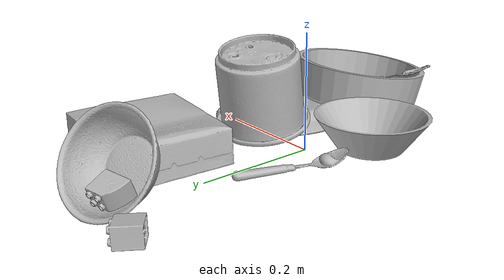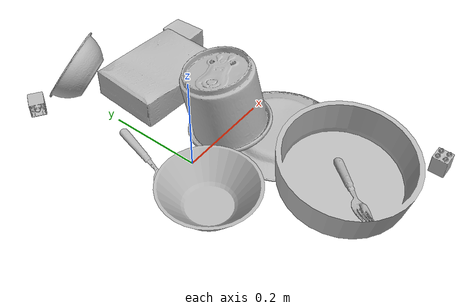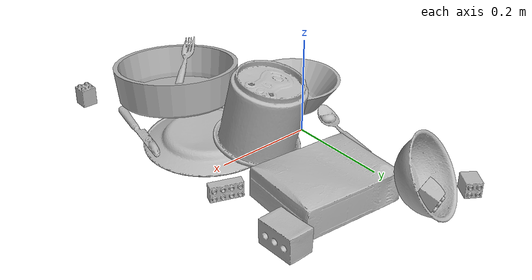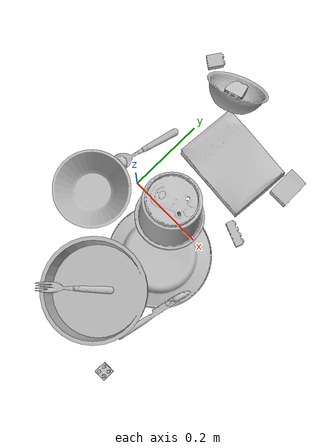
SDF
<sdf version="1.4">
  <world name="default">
    <light name="light1" type="point">
      <pose>0 0 1 0 0 0</pose>
      <diffuse>3 3 3 1</diffuse>
      <specular>3 3 3 1</specular>
    </light>
    <light name="light2" type="point">
      <pose>0 0.5 2 0 0 0</pose>
      <diffuse>1 1 1 1</diffuse>
      <specular>1 1 1 1</specular>
    </light>
    <light name="light3" type="point">
      <pose>0 0.5 2 0 0 0</pose>
      <diffuse>3 3 3 1</diffuse>
      <specular>3 3 3 1</specular>
    </light>
    <scene>
      <ambient>0.7 0.7 0.7</ambient>
    </scene>
    <model name="plate1">
      <link name="link_plate1">
        <collision name="default">
          <geometry>
            <mesh>
              <uri>model://plate/collision_meshes/collision.obj</uri>
              <scale>1.0 1.0 1.0</scale>
            </mesh>
          </geometry>
          <surface>
            <friction>
              <ode>
                <mu>0.5</mu>
                <mu2>0.5</mu2>
              </ode>
            </friction>
          <contact>
        <ode>
            <max_vel>0</max_vel>
            <min_depth>0.0001</min_depth>
            <kp>1e8</kp>
        </ode>
    </contact></surface>
        </collision>
        <visual name="default">
          <geometry>
            <mesh>
              <uri>model://plate/visual_meshes/visual.dae</uri>
              <scale>1.0 1.0 1.0</scale>
            </mesh>
          </geometry>
        </visual>
        <inertial>
          <mass>0.14927330613136292</mass>
          <pose>-0.0006044599576853216 0.00027825793949887156 -0.0010561984963715076 0.0022187657602494516 -0.0032254905015569333 0.45261542380491104</pose>
          <inertia>
            <ixx>0.0006983033</ixx>
            <iyy>0.0006916243</iyy>
            <izz>0.0013657772</izz>
            <ixy>0</ixy>
            <ixz>0</ixz>
            <iyz>0</iyz>
          </inertia>
        </inertial>
      </link>
      <pose>0.169308140873909 -0.08792896568775177 0.013438376598060131 3.141548125325414 -0.003180509156632683 0.1472331380368629</pose>
    </model>
    <model name="plate2">
      <link name="link_plate2">
        <collision name="default">
          <geometry>
            <mesh>
              <uri>model://pan_tefal/collision_meshes/collision.obj</uri>
              <scale>1.0 1.0 1.0</scale>
            </mesh>
          </geometry>
          <surface>
            <friction>
              <ode>
                <mu>0.5</mu>
                <mu2>0.5</mu2>
              </ode>
            </friction>
          <contact>
        <ode>
            <max_vel>0</max_vel>
            <min_depth>0.0001</min_depth>
            <kp>1e8</kp>
        </ode>
    </contact></surface>
        </collision>
        <visual name="default">
          <geometry>
            <mesh>
              <uri>model://pan_tefal/visual_meshes/visual.dae</uri>
              <scale>1.0 1.0 1.0</scale>
            </mesh>
          </geometry>
        </visual>
        <inertial>
          <mass>1.1722657680511475</mass>
          <pose>-0.00018002268916461617 3.2786720112198964e-05 -0.008514933288097382 0.0008190189984333748 -0.0003301390782503885 -0.3318520141268409</pose>
          <inertia>
            <ixx>0.008092094</ixx>
            <iyy>0.008144264</iyy>
            <izz>0.014895983</izz>
            <ixy>0</ixy>
            <ixz>0</ixz>
            <iyz>0</iyz>
          </inertia>
        </inertial>
      </link>
      <pose>0.12422322481870651 -0.26140695810317993 0.052451636642217636 0.10944371662144527 -0.06745153971051542 0.05490864961311592</pose>
    </model>
    <model name="bowl1">
      <link name="link_bowl1">
        <collision name="default">
          <geometry>
            <mesh>
              <uri>model://bowl_a/collision_meshes/collision.obj</uri>
              <scale>1.0 1.0 1.0</scale>
            </mesh>
          </geometry>
          <surface>
            <friction>
              <ode>
                <mu>0.5</mu>
                <mu2>0.5</mu2>
              </ode>
            </friction>
          <contact>
        <ode>
            <max_vel>0</max_vel>
            <min_depth>0.0001</min_depth>
            <kp>1e8</kp>
        </ode>
    </contact></surface>
        </collision>
        <visual name="default">
          <geometry>
            <mesh>
              <uri>model://bowl_a/visual_meshes/visual.dae</uri>
              <scale>1.0 1.0 1.0</scale>
            </mesh>
          </geometry>
        </visual>
        <inertial>
          <mass>0.2988097667694092</mass>
          <pose>0.0002786743571050465 4.731365334009752e-05 -0.0013765293406322598 -0.0009805349169279892 -0.001093820822183951 -0.19123530183129564</pose>
          <inertia>
            <ixx>0.00085072505</ixx>
            <iyy>0.00085594796</iyy>
            <izz>0.0015130473</izz>
            <ixy>0</ixy>
            <ixz>0</ixz>
            <iyz>0</iyz>
          </inertia>
        </inertial>
      </link>
      <pose>-0.06271606683731079 -0.09405342489480972 0.030382990837097168 -1.2342558993366941e-05 -4.126203976885934e-06 0.46823199112113273</pose>
    </model>
    <model name="bowl2">
      <link name="link_bowl2">
        <collision name="default">
          <geometry>
            <mesh>
              <uri>model://bowl/collision_meshes/collision.obj</uri>
              <scale>1.0 1.0 1.0</scale>
            </mesh>
          </geometry>
          <surface>
            <friction>
              <ode>
                <mu>0.5</mu>
                <mu2>0.5</mu2>
              </ode>
            </friction>
          <contact>
        <ode>
            <max_vel>0</max_vel>
            <min_depth>0.0001</min_depth>
            <kp>1e8</kp>
        </ode>
    </contact></surface>
        </collision>
        <visual name="default">
          <geometry>
            <mesh>
              <uri>model://bowl/visual_meshes/visual.dae</uri>
              <scale>1.0 1.0 1.0</scale>
            </mesh>
          </geometry>
        </visual>
        <inertial>
          <mass>0.05087859928607941</mass>
          <pose>0.00020445352129172534 -0.001030206447467208 -0.0008042655535973608 -0.015764084400621287 0.014546790156403148 0.7140405806030785</pose>
          <inertia>
            <ixx>0.0001168722</ixx>
            <iyy>0.00011426082</iyy>
            <izz>0.0001966192</izz>
            <ixy>0</ixy>
            <ixz>0</ixz>
            <iyz>0</iyz>
          </inertia>
        </inertial>
      </link>
      <pose>0.018419967964291573 0.32049575448036194 0.05758817493915558 1.0289032458453948 0.023325633480394382 -2.752076418423475</pose>
    </model>
    <model name="silverware1">
      <link name="link_silverware1">
        <collision name="default">
          <geometry>
            <mesh>
              <uri>model://spoon/collision_meshes/collision.obj</uri>
              <scale>1.0 1.0 1.0</scale>
            </mesh>
          </geometry>
          <surface>
            <friction>
              <ode>
                <mu>0.5</mu>
                <mu2>0.5</mu2>
              </ode>
            </friction>
          <contact>
        <ode>
            <max_vel>0</max_vel>
            <min_depth>0.0001</min_depth>
            <kp>1e8</kp>
        </ode>
    </contact></surface>
        </collision>
        <visual name="default">
          <geometry>
            <mesh>
              <uri>model://spoon/visual_meshes/visual.dae</uri>
              <scale>1.0 1.0 1.0</scale>
            </mesh>
          </geometry>
        </visual>
        <inertial>
          <mass>0.031133336946368217</mass>
          <pose>-0.005526311229914427 -0.001603417214937508 -0.000727165665011853 0.03521724372111935 -0.03906583963771688 0.006150613707428126</pose>
          <inertia>
            <ixx>1.7316867e-06</ixx>
            <iyy>0.00011846133</iyy>
            <izz>0.00011931534</izz>
            <ixy>0</ixy>
            <ixz>0</ixz>
            <iyz>0</iyz>
          </inertia>
        </inertial>
      </link>
      <pose>-0.048174887895584106 0.06954186409711838 0.008385354653000832 0.00672143802064962 0.0268892482822647 -1.8426015456514198</pose>
    </model>
    <model name="box1">
      <link name="link_box1">
        <collision name="default">
          <geometry>
            <mesh>
              <uri>model://cracker_box/collision_meshes/collision.obj</uri>
              <scale>1.0 1.0 1.0</scale>
            </mesh>
          </geometry>
          <surface>
            <friction>
              <ode>
                <mu>0.5</mu>
                <mu2>0.5</mu2>
              </ode>
            </friction>
          <contact>
        <ode>
            <max_vel>0</max_vel>
            <min_depth>0.0001</min_depth>
            <kp>1e8</kp>
        </ode>
    </contact></surface>
        </collision>
        <visual name="default">
          <geometry>
            <mesh>
              <uri>model://cracker_box/visual_meshes/visual.dae</uri>
              <scale>1.0 1.0 1.0</scale>
            </mesh>
          </geometry>
        </visual>
        <inertial>
          <mass>2.900710344314575</mass>
          <pose>0.0009464158210903406 0.00025434247800149024 -0.0017029534792527556 -0.0003162075379034469 -0.011106488669169442 0.0025467947685016775</pose>
          <inertia>
            <ixx>0.007378111</ixx>
            <iyy>0.012182713</iyy>
            <izz>0.01738585</izz>
            <ixy>0</ixy>
            <ixz>0</ixz>
            <iyz>0</iyz>
          </inertia>
        </inertial>
      </link>
      <pose>0.13311278820037842 0.2016453891992569 0.03648180514574051 -0.011787936204669612 -0.007367118264824203 -0.07654050721797355</pose>
    </model>
    <model name="box2">
      <link name="link_box2">
        <collision name="default">
          <geometry>
            <mesh>
              <uri>model://rubiks_cube/collision_meshes/collision.obj</uri>
              <scale>1.0 1.0 1.0</scale>
            </mesh>
          </geometry>
          <surface>
            <friction>
              <ode>
                <mu>0.5</mu>
                <mu2>0.5</mu2>
              </ode>
            </friction>
          <contact>
        <ode>
            <max_vel>0</max_vel>
            <min_depth>0.0001</min_depth>
            <kp>1e8</kp>
        </ode>
    </contact></surface>
        </collision>
        <visual name="default">
          <geometry>
            <mesh>
              <uri>model://rubiks_cube/visual_meshes/visual.dae</uri>
              <scale>1.0 1.0 1.0</scale>
            </mesh>
          </geometry>
        </visual>
        <inertial>
          <mass>0.28670012950897217</mass>
          <pose>2.6721039830590598e-05 5.2569666877388954e-05 -7.264316082000732e-06 -0.05467310906580907 -0.09814045067101686 -0.03445712671449578</pose>
          <inertia>
            <ixx>0.00015842107</ixx>
            <iyy>0.0001576823</iyy>
            <izz>0.00015973386</izz>
            <ixy>0</ixy>
            <ixz>0</ixz>
            <iyz>0</iyz>
          </inertia>
        </inertial>
      </link>
      <pose>0.09516768902540207 0.018693316727876663 0.03973309323191643 -0.2982899996955342 1.1884298415143304 -0.5945914418603513</pose>
    </model>
    <model name="cup1">
      <link name="link_cup1">
        <collision name="default">
          <geometry>
            <mesh>
              <uri>model://g_cups/collision_meshes/collision.obj</uri>
              <scale>2.0 2.0 2.0</scale>
            </mesh>
          </geometry>
          <surface>
            <friction>
              <ode>
                <mu>0.5</mu>
                <mu2>0.5</mu2>
              </ode>
            </friction>
          <contact>
        <ode>
            <max_vel>0</max_vel>
            <min_depth>0.0001</min_depth>
            <kp>1e8</kp>
        </ode>
    </contact></surface>
        </collision>
        <visual name="default">
          <geometry>
            <mesh>
              <uri>model://g_cups/visual_meshes/visual.dae</uri>
              <scale>2.0 2.0 2.0</scale>
            </mesh>
          </geometry>
        </visual>
        <inertial>
          <mass>0.7979594469070435</mass>
          <pose>-0.001589252962730825 -8.413367322646081e-05 -0.004265873227268457 -0.2138242542550812 -0.3141046905663657 0.3112069095441374</pose>
          <inertia>
            <ixx>0.0037255902</ixx>
            <iyy>0.003712916</iyy>
            <izz>0.0038590694</izz>
            <ixy>0</ixy>
            <ixz>0</ixz>
            <iyz>0</iyz>
          </inertia>
        </inertial>
      </link>
      <pose>0.10989437997341156 0.009416035376489162 0.0894213542342186 -3.1112066557220532 -0.19834534498210896 -1.1625025636903308</pose>
    </model>
    <model name="silverware2">
      <link name="link_silverware2">
        <collision name="default">
          <geometry>
            <mesh>
              <uri>model://fork/collision_meshes/collision.obj</uri>
              <scale>1.0 1.0 1.0</scale>
            </mesh>
          </geometry>
          <surface>
            <friction>
              <ode>
                <mu>0.5</mu>
                <mu2>0.5</mu2>
              </ode>
            </friction>
          <contact>
        <ode>
            <max_vel>0</max_vel>
            <min_depth>0.0001</min_depth>
            <kp>1e8</kp>
        </ode>
    </contact></surface>
        </collision>
        <visual name="default">
          <geometry>
            <mesh>
              <uri>model://fork/visual_meshes/visual.dae</uri>
              <scale>1.0 1.0 1.0</scale>
            </mesh>
          </geometry>
        </visual>
        <inertial>
          <mass>0.026295984163880348</mass>
          <pose>-0.02957003563642502 0.0004658822435885668 0.0003218861238565296 -0.013551585765180826 -0.010977835012843383 0.014453895551669751</pose>
          <inertia>
            <ixx>9.2182285e-07</ixx>
            <iyy>6.865125e-05</iyy>
            <izz>6.9063564e-05</izz>
            <ixy>0</ixy>
            <ixz>0</ixz>
            <iyz>0</iyz>
          </inertia>
        </inertial>
      </link>
      <pose>0.08381623029708862 -0.2941852807998657 0.05739866942167282 -0.07085358076816624 -0.2540853666011922 -2.385157324417507</pose>
    </model>
    <model name="silverware3">
      <link name="link_silverware3">
        <collision name="default">
          <geometry>
            <mesh>
              <uri>model://knife/collision_meshes/collision.obj</uri>
              <scale>1.0 1.0 1.0</scale>
            </mesh>
          </geometry>
          <surface>
            <friction>
              <ode>
                <mu>0.5</mu>
                <mu2>0.5</mu2>
              </ode>
            </friction>
          <contact>
        <ode>
            <max_vel>0</max_vel>
            <min_depth>0.0001</min_depth>
            <kp>1e8</kp>
        </ode>
    </contact></surface>
        </collision>
        <visual name="default">
          <geometry>
            <mesh>
              <uri>model://knife/visual_meshes/visual.dae</uri>
              <scale>1.0 1.0 1.0</scale>
            </mesh>
          </geometry>
        </visual>
        <inertial>
          <mass>0.018686598166823387</mass>
          <pose>-0.023785265162587166 0.001527512213215232 5.06201722600963e-05 0.0730586728597059 0.01724841756758314 -0.007409823953988089</pose>
          <inertia>
            <ixx>5.3040145e-07</ixx>
            <iyy>7.1790884e-05</iyy>
            <izz>7.1961695e-05</izz>
            <ixy>0</ixy>
            <ixz>0</ixz>
            <iyz>0</iyz>
          </inertia>
        </inertial>
      </link>
      <pose>0.2614719271659851 -0.1995762288570404 0.009245331399142742 -2.898937510342487 -0.007030690249619709 1.366306479652541</pose>
    </model>
    <model name="toy1">
      <link name="link_toy1">
        <collision name="default">
          <geometry>
            <mesh>
              <uri>model://d_lego_duplo/collision_meshes/collision.obj</uri>
              <scale>1.0 1.0 1.0</scale>
            </mesh>
          </geometry>
          <surface>
            <friction>
              <ode>
                <mu>0.5</mu>
                <mu2>0.5</mu2>
              </ode>
            </friction>
          <contact>
        <ode>
            <max_vel>0</max_vel>
            <min_depth>0.0001</min_depth>
            <kp>1e8</kp>
        </ode>
    </contact></surface>
        </collision>
        <visual name="default">
          <geometry>
            <mesh>
              <uri>model://d_lego_duplo/visual_meshes/visual.dae</uri>
              <scale>1.0 1.0 1.0</scale>
            </mesh>
          </geometry>
        </visual>
        <inertial>
          <mass>0.057973701506853104</mass>
          <pose>0.002830564510077238 0.0001636612432776019 0.000858980929479003 0.08010949801199577 -0.38355255965562274 0.0010296774355632512</pose>
          <inertia>
            <ixx>1.1222855e-05</ixx>
            <iyy>1.5928275e-05</iyy>
            <izz>1.5360585e-05</izz>
            <ixy>0</ixy>
            <ixz>0</ixz>
            <iyz>0</iyz>
          </inertia>
        </inertial>
      </link>
      <pose>0.0074187833815813065 0.3381628096103668 0.02559875138103962 -1.947232157675053 -0.07216357020787047 0.3090918227175245</pose>
    </model>
    <model name="toy2">
      <link name="link_toy2">
        <collision name="default">
          <geometry>
            <mesh>
              <uri>model://c_lego_duplo/collision_meshes/collision.obj</uri>
              <scale>1.0 1.0 1.0</scale>
            </mesh>
          </geometry>
          <surface>
            <friction>
              <ode>
                <mu>0.5</mu>
                <mu2>0.5</mu2>
              </ode>
            </friction>
          <contact>
        <ode>
            <max_vel>0</max_vel>
            <min_depth>0.0001</min_depth>
            <kp>1e8</kp>
        </ode>
    </contact></surface>
        </collision>
        <visual name="default">
          <geometry>
            <mesh>
              <uri>model://c_lego_duplo/visual_meshes/visual.dae</uri>
              <scale>1.0 1.0 1.0</scale>
            </mesh>
          </geometry>
        </visual>
        <inertial>
          <mass>0.03295557200908661</mass>
          <pose>0.00031645927811041474 0.0001946454867720604 0.0010453149443492293 -0.011520797378012098 0.005900082234647494 0.03110035414112205</pose>
          <inertia>
            <ixx>1.2681916e-05</ixx>
            <iyy>4.0510618e-06</iyy>
            <izz>1.4820123e-05</izz>
            <ixy>0</ixy>
            <ixz>0</ixz>
            <iyz>0</iyz>
          </inertia>
        </inertial>
      </link>
      <pose>0.26148536801338196 0.08475279062986374 0.01640290766954422 -1.4151620777730745 1.5444094279461098 -0.20542815825939573</pose>
    </model>
    <model name="toy3">
      <link name="link_toy3">
        <collision name="default">
          <geometry>
            <mesh>
              <uri>model://foam_brick/collision_meshes/collision.obj</uri>
              <scale>1.0 1.0 1.0</scale>
            </mesh>
          </geometry>
          <surface>
            <friction>
              <ode>
                <mu>0.5</mu>
                <mu2>0.5</mu2>
              </ode>
            </friction>
          <contact>
        <ode>
            <max_vel>0</max_vel>
            <min_depth>0.0001</min_depth>
            <kp>1e8</kp>
        </ode>
    </contact></surface>
        </collision>
        <visual name="default">
          <geometry>
            <mesh>
              <uri>model://foam_brick/visual_meshes/visual.dae</uri>
              <scale>1.0 1.0 1.0</scale>
            </mesh>
          </geometry>
        </visual>
        <inertial>
          <mass>0.2026180773973465</mass>
          <pose>-0.00025224717683158815 0.0003458433202467859 -0.0002532101352699101 -0.2940154265809752 0.017274439844268085 -0.0007449877964386924</pose>
          <inertia>
            <ixx>8.850737e-05</ixx>
            <iyy>0.00014130655</iyy>
            <izz>0.00014310238</izz>
            <ixy>0</ixy>
            <ixz>0</ixz>
            <iyz>0</iyz>
          </inertia>
        </inertial>
      </link>
      <pose>0.27308040857315063 0.2563873529434204 0.025910692289471626 1.5828209220806901 -0.00037572935949842896 1.5991107126997723</pose>
    </model>
    <model name="toy4">
      <link name="link_toy4">
        <collision name="default">
          <geometry>
            <mesh>
              <uri>model://f_lego_duplo/collision_meshes/collision.obj</uri>
              <scale>1.0 1.0 1.0</scale>
            </mesh>
          </geometry>
          <surface>
            <friction>
              <ode>
                <mu>0.5</mu>
                <mu2>0.5</mu2>
              </ode>
            </friction>
          <contact>
        <ode>
            <max_vel>0</max_vel>
            <min_depth>0.0001</min_depth>
            <kp>1e8</kp>
        </ode>
    </contact></surface>
        </collision>
        <visual name="default">
          <geometry>
            <mesh>
              <uri>model://f_lego_duplo/visual_meshes/visual.dae</uri>
              <scale>1.0 1.0 1.0</scale>
            </mesh>
          </geometry>
        </visual>
        <inertial>
          <mass>0.026114314794540405</mass>
          <pose>2.3694528863416053e-05 0.00013393153494689614 0.001883787801489234 0.02983849389432246 -0.014425286210530337 -0.675657453158783</pose>
          <inertia>
            <ixx>5.5180976e-06</ixx>
            <iyy>5.5672576e-06</iyy>
            <izz>4.7899434e-06</izz>
            <ixy>0</ixy>
            <ixz>0</ixz>
            <iyz>0</iyz>
          </inertia>
        </inertial>
      </link>
      <pose>-0.08218356966972351 0.35598647594451904 0.01636384055018425 0.6509080685425381 -1.570735814662845 -2.8117461784918105</pose>
    </model>
    <model name="toy5">
      <link name="link_toy5">
        <collision name="default">
          <geometry>
            <mesh>
              <uri>model://b_lego_duplo/collision_meshes/collision.obj</uri>
              <scale>1.0 1.0 1.0</scale>
            </mesh>
          </geometry>
          <surface>
            <friction>
              <ode>
                <mu>0.5</mu>
                <mu2>0.5</mu2>
              </ode>
            </friction>
          <contact>
        <ode>
            <max_vel>0</max_vel>
            <min_depth>0.0001</min_depth>
            <kp>1e8</kp>
        </ode>
    </contact></surface>
        </collision>
        <visual name="default">
          <geometry>
            <mesh>
              <uri>model://b_lego_duplo/visual_meshes/visual.dae</uri>
              <scale>1.0 1.0 1.0</scale>
            </mesh>
          </geometry>
        </visual>
        <inertial>
          <mass>0.0471348837018013</mass>
          <pose>-0.00011053068010369316 -9.152583515970036e-06 0.0019294292433187366 -0.037494549971735465 -0.026354388193955382 0.45188781154390406</pose>
          <inertia>
            <ixx>9.646508e-06</ixx>
            <iyy>9.711356e-06</iyy>
            <izz>8.594722e-06</izz>
            <ixy>0</ixy>
            <ixz>0</ixz>
            <iyz>0</iyz>
          </inertia>
        </inertial>
      </link>
      <pose>0.27865731716156006 -0.38367727398872375 0.021814990788698196 4.257379236997243e-07 -5.199448956443098e-07 1.5705225253982154</pose>
    </model>
  <physics type="ode">
      <max_contacts>50</max_contacts>
      <ode>
        <solver>
          <type>quick</type>
          <iters>75</iters>
        </solver>
        <constraints>
          <contact_max_correcting_vel>0</contact_max_correcting_vel>
          <contact_surface_layer>0</contact_surface_layer>
        </constraints>
      </ode>
    </physics></world>
</sdf>
